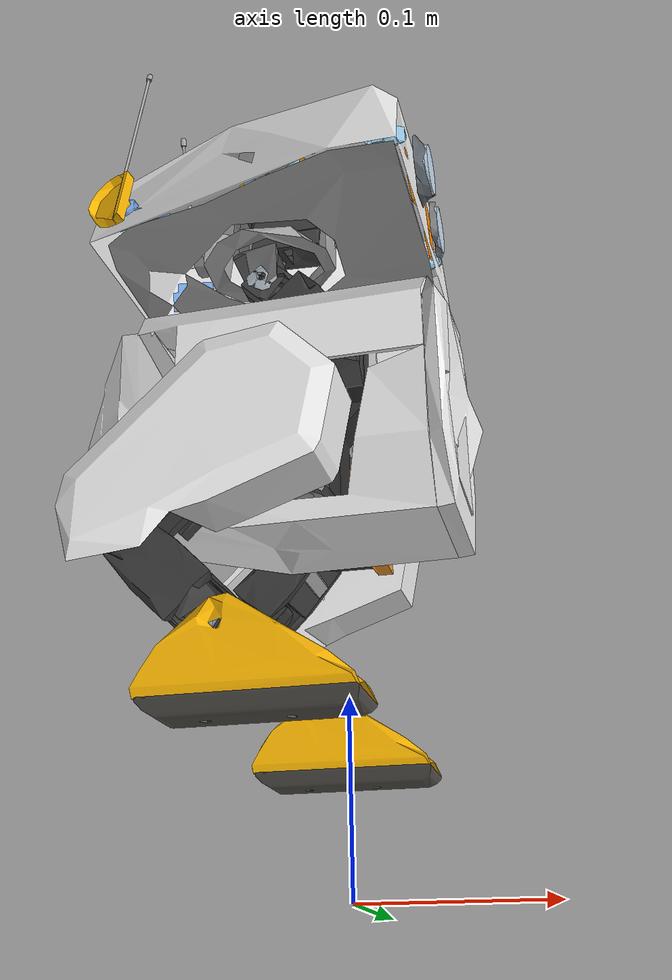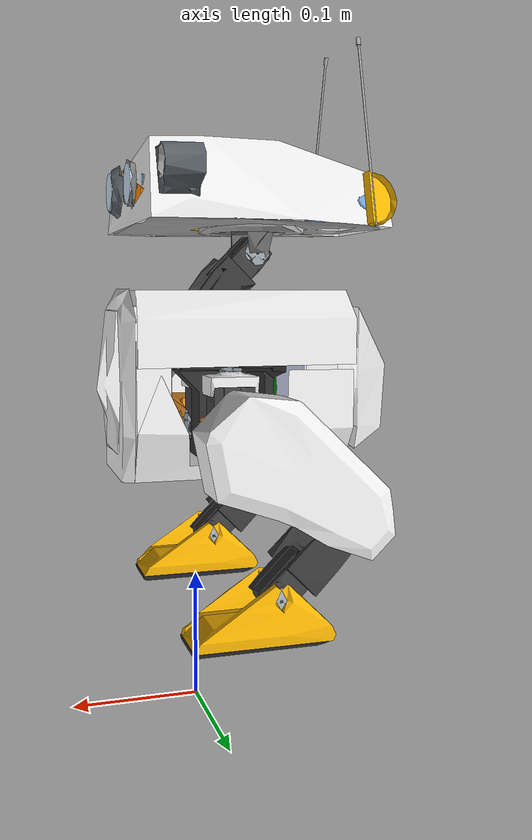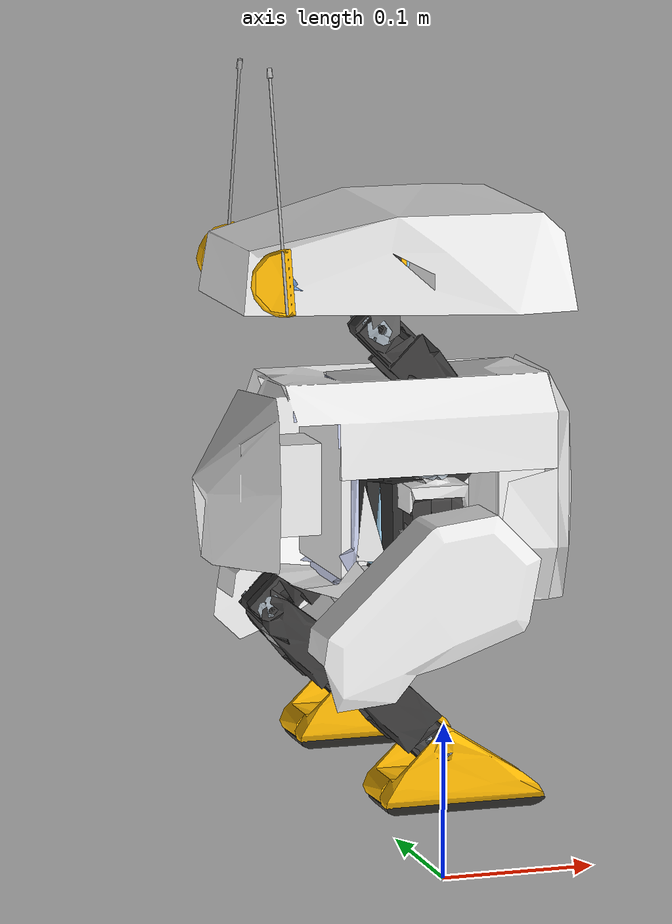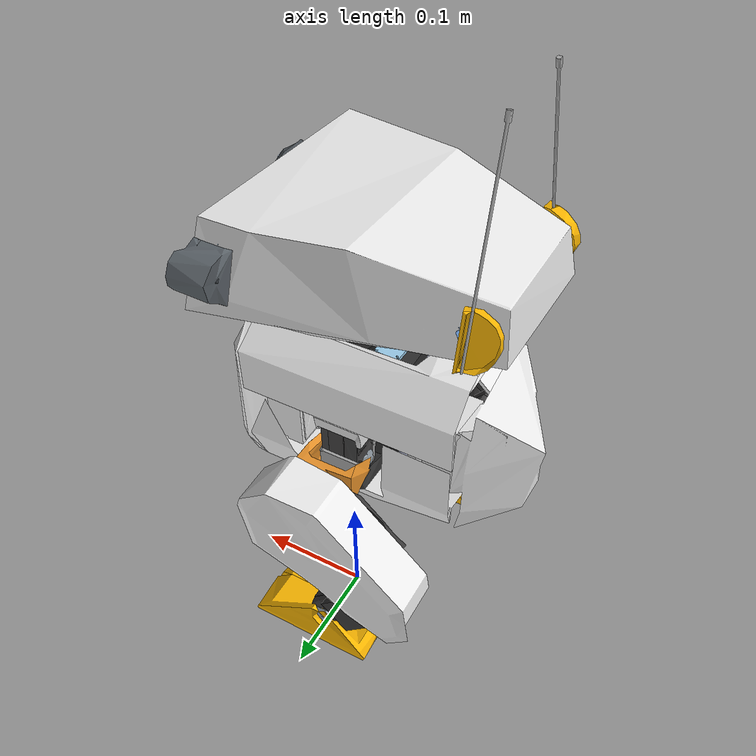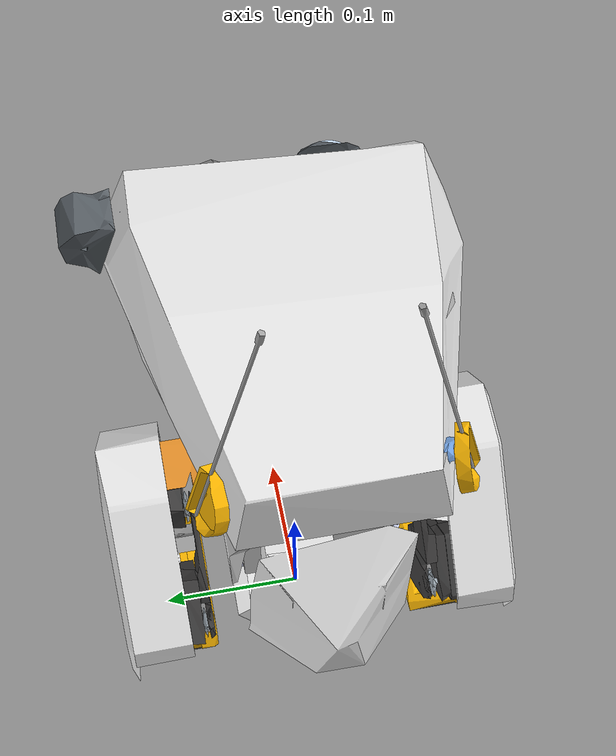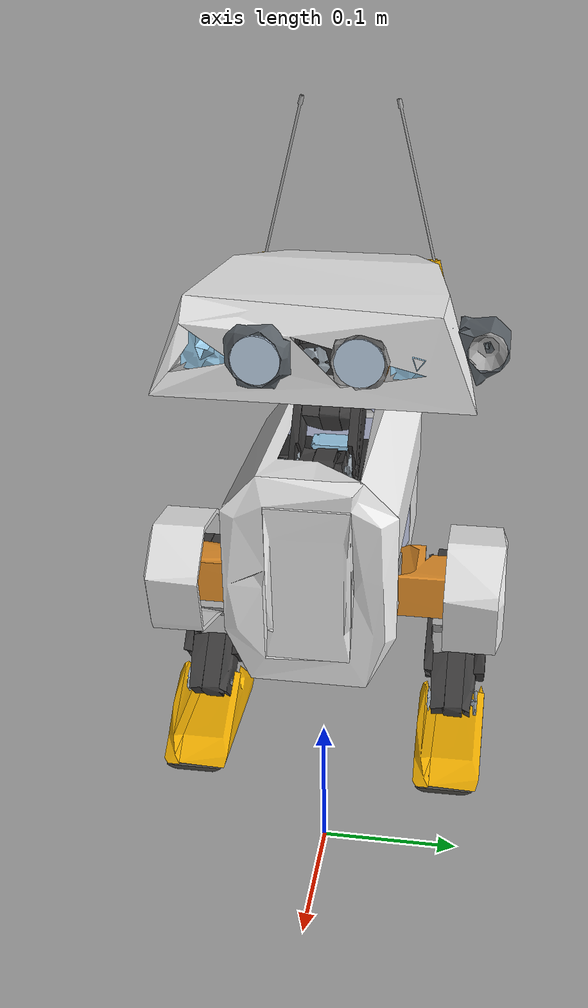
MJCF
<?xml version="1.0" ?>
<!-- Generated using onshape-to-robot -->
<!-- Onshape https://cad.onshape.com/documents/8c845fbc7fa3a1413249e3ae/w/48f29f8f32358649cb0ef961/e/a093785b026f87eebf78a749 -->
<mujoco model="waddle">
  <!-- They had this option in openduck so added here -->
  <option iterations="1" ls_iterations="5">
    <flag eulerdamp="disable"/>
  </option>

  <compiler angle="radian" meshdir="assets" autolimits="true"/>

  <default>
    <default class="waddle">
      <default class="visual">
        <geom type="mesh" contype="0" conaffinity="0" group="2"/>
      </default>
      <default class="collision">
        <geom group="3"/>
      </default>
    </default>
  </default>
  <!-- Additional xmls/sensors.xml -->
  <sensor>
    <gyro site="imu" name="gyro"/>
    <velocimeter site="imu" name="local_linvel"/>
    <accelerometer site="imu" name="accelerometer"/>
    <framezaxis objtype="site" objname="imu" name="upvector"/>
    <framexaxis objtype="site" objname="imu" name="forwardvector"/>
    <framelinvel objtype="site" objname="imu" name="global_linvel"/>
    <frameangvel objtype="site" objname="imu" name="global_angvel"/>
    <framepos objtype="site" objname="imu" name="position"/>
    <framequat objtype="site" objname="imu" name="orientation"/>
    <framelinvel objtype="site" objname="right_foot" name="right_foot_global_linvel"/>
    <framelinvel objtype="site" objname="left_foot" name="left_foot_global_linvel"/>
    <framexaxis objtype="site" objname="left_foot" name="left_foot_upvector"/>
    <framexaxis objtype="site" objname="right_foot" name="right_foot_upvector"/>
    <framepos objtype="site" objname="left_foot" name="left_foot_pos"/>
    <framepos objtype="site" objname="right_foot" name="right_foot_pos"/>
  </sensor>
  <!-- Additional xmls/joints_properties.xml -->
  <default>
    <default class="sts3215">
      <geom contype="0" conaffinity="0"/>
      <joint damping="0.56" frictionloss="0.068" armature="0.027"/>
      <position kp="17.11" kv="0.0" forcerange="-3.23 3.23"/>
    </default>
    <default class="sts3215_12v">
      <geom contype="0" conaffinity="0"/>
      <joint damping="1.05" frictionloss="0.195" armature="0.032"/>
      <position kp="46.3" kv="0.0" forcerange="-8.53 8.53"/>
      <default class="chosen_actuator"/>
    </default>
    <default class="backlash">
      <!-- +/- 0.5° of backlash -->
      <joint damping="0.01" frictionloss="0" armature="0.01" limited="true"
        range="-0.008726646259971648 0.008726646259971648"/>
    </default>
  </default>
  <worldbody>
    <body name="base" pos="0 0 0.22">
      <freejoint name="floating_base"/>
      <site name="imu" pos="-0.040705 -1.715e-09 0.0862909"/>

      <!-- Link trunk_assembly -->
      <body name="trunk_assembly" pos="0 0 0" quat="1 0 0 0" childclass="waddle">
        <inertial pos="-0.0215141 0.00119061 0.0354003" mass="1.1678" fullinertia="0.00252715 0.00565527 0.00482046 0.000146105 0.000181039 -2.75948e-05"/>
        <!-- Part jetson_nano_baseplate -->
        <geom type="mesh" class="visual" pos="-0.072 0 0.0648909" quat="0.707107 -0 -0.707107 0" mesh="jetson_nano_baseplate" material="jetson_nano_baseplate_material"/>
        <!-- Part body_front -->
        <geom type="mesh" class="visual" pos="0.001 0 0.0648909" quat="1 -0 -0 0" mesh="body_front" material="body_front_material"/>
        <!-- Part battery_enclosure -->
        <geom type="mesh" class="visual" pos="0.065 0.027 -0.0151091" quat="0.707107 -0 -0.707107 -0" mesh="battery_enclosure" material="battery_enclosure_material"/>
        <!-- Part turnigy_3s_battery -->
        <geom type="mesh" class="visual" pos="0.027 -0.021 -0.0151091" quat="0 0.707107 0 0.707107" mesh="turnigy_3s_battery" material="turnigy_3s_battery_material"/>
        <!-- Part body_middle_bottom -->
        <geom type="mesh" class="visual" pos="-0.019 -0 0.0648909" quat="1 -0 -0 0" mesh="body_middle_bottom" material="body_middle_bottom_material"/>
        <!-- Part simplified_jetson_nano -->
        <geom type="mesh" class="visual" pos="-0.075 -0.0455645 -0.0129091" quat="0.707107 -0 -0.707107 -0" mesh="simplified_jetson_nano" material="simplified_jetson_nano_material"/>
        <!-- Part switch -->
        <geom type="mesh" class="visual" pos="0.016 -0.0183295 -0.00648406" quat="0.707107 -0.707107 0 0" mesh="switch" material="switch_material"/>
        <!-- Part body_middle_top -->
        <geom type="mesh" class="visual" pos="-0.019 0 0.0648909" quat="1 0 0 0" mesh="body_middle_top" material="body_middle_top_material"/>
        <!-- Part body_back -->
        <geom type="mesh" class="visual" pos="-0.019 0 0.0648909" quat="1 -0 -0 0" mesh="body_back" material="body_back_material"/>
        <!-- Part bno055 -->
        <geom type="mesh" class="visual" pos="-0.040705 -1.715e-09 0.0917909" quat="0 -0 1 -0" mesh="bno055" material="bno055_material"/>
        <!-- Part roll_bearing -->
        <geom type="mesh" class="visual" pos="-0.019 -0 0.0648909" quat="1 0 0 -0" mesh="roll_bearing" material="roll_bearing_material"/>
        <!-- Part trunk_bottom -->
        <geom type="mesh" class="visual" pos="-0.019 0 0.0648909" quat="1 -0 0 0" mesh="trunk_bottom" material="trunk_bottom_material"/>
        <!-- Part trunk_top -->
        <geom type="mesh" class="visual" pos="-0.019 -0 0.0648909" quat="1 -0 -0 0" mesh="trunk_top" material="trunk_top_material"/>
        <!-- Part board -->
        <geom type="mesh" class="visual" pos="-0.06371 0.0171628 0.0404109" quat="0 0.707107 -0 -0.707107" mesh="board" material="board_material"/>
        <!-- Part roll_bearing_2 -->
        <geom type="mesh" class="visual" pos="-0.019 -0.07 0.0648909" quat="1 0 0 -0" mesh="roll_bearing" material="roll_bearing_material"/>
        <!-- Part pdb_xt60 -->
        <geom type="mesh" class="visual" pos="-0.04661 -0.018 0.00179094" quat="0.5 -0.5 -0.5 0.5" mesh="pdb_xt60" material="pdb_xt60_material"/>
        <!-- Part wj_wk00_0123middlecase_56 -->
        <geom type="mesh" class="visual" pos="0.001 0.0097 0.0645009" quat="0.707107 -0 0.707107 -0" mesh="wj_wk00_0123middlecase_56" material="wj_wk00_0123middlecase_56_material"/>
        <!-- Part drive_palonier -->
        <geom type="mesh" class="visual" pos="0.001 0.0097 0.0645009" quat="0.707107 -0 0.707107 -0" mesh="drive_palonier" material="drive_palonier_material"/>
        <!-- Part wj_wk00_0124bottomcase_45 -->
        <geom type="mesh" class="visual" pos="0.001 0.0097 0.0645009" quat="0.707107 -0 0.707107 -0" mesh="wj_wk00_0124bottomcase_45" material="wj_wk00_0124bottomcase_45_material"/>
        <!-- Part wj_wk00_0122topcabinetcase_95 -->
        <geom type="mesh" class="visual" pos="0.001 0.0097 0.0645009" quat="0.707107 -0 0.707107 -0" mesh="wj_wk00_0122topcabinetcase_95" material="wj_wk00_0122topcabinetcase_95_material"/>
        <!-- Part passive_palonier -->
        <geom type="mesh" class="visual" pos="0.001 0.0126 0.0645009" quat="0.707107 -0 0.707107 -0" mesh="passive_palonier" material="passive_palonier_material"/>
        <!-- Part wj_wk00_0123middlecase_56_2 -->
        <geom type="mesh" class="visual" pos="-0.0445 -0.035 0.0553909" quat="0 0 0.707107 -0.707107" mesh="wj_wk00_0123middlecase_56" material="wj_wk00_0123middlecase_56_material"/>
        <!-- Part drive_palonier_2 -->
        <geom type="mesh" class="visual" pos="-0.0445 -0.035 0.0553909" quat="0 0 0.707107 -0.707107" mesh="drive_palonier" material="drive_palonier_material"/>
        <!-- Part wj_wk00_0124bottomcase_45_2 -->
        <geom type="mesh" class="visual" pos="-0.0445 -0.035 0.0553909" quat="0 0 0.707107 -0.707107" mesh="wj_wk00_0124bottomcase_45" material="wj_wk00_0124bottomcase_45_material"/>
        <!-- Part wj_wk00_0122topcabinetcase_95_2 -->
        <geom type="mesh" class="visual" pos="-0.0445 -0.035 0.0553909" quat="0 0 0.707107 -0.707107" mesh="wj_wk00_0122topcabinetcase_95" material="wj_wk00_0122topcabinetcase_95_material"/>
        <!-- Part passive_palonier_2 -->
        <geom type="mesh" class="visual" pos="-0.0445 -0.035 0.0524909" quat="0 0 0.707107 -0.707107" mesh="passive_palonier" material="passive_palonier_material"/>
        <!-- Part wj_wk00_0123middlecase_56_3 -->
        <geom type="mesh" class="visual" pos="-0.0445 0.035 0.0553909" quat="0 0 0.707107 -0.707107" mesh="wj_wk00_0123middlecase_56" material="wj_wk00_0123middlecase_56_material"/>
        <!-- Part drive_palonier_3 -->
        <geom type="mesh" class="visual" pos="-0.0445 0.035 0.0553909" quat="0 0 0.707107 -0.707107" mesh="drive_palonier" material="drive_palonier_material"/>
        <!-- Part wj_wk00_0124bottomcase_45_3 -->
        <geom type="mesh" class="visual" pos="-0.0445 0.035 0.0553909" quat="0 0 0.707107 -0.707107" mesh="wj_wk00_0124bottomcase_45" material="wj_wk00_0124bottomcase_45_material"/>
        <!-- Part wj_wk00_0122topcabinetcase_95_3 -->
        <geom type="mesh" class="visual" pos="-0.0445 0.035 0.0553909" quat="0 0 0.707107 -0.707107" mesh="wj_wk00_0122topcabinetcase_95" material="wj_wk00_0122topcabinetcase_95_material"/>
        <!-- Part passive_palonier_3 -->
        <geom type="mesh" class="visual" pos="-0.0445 0.035 0.0524909" quat="0 0 0.707107 -0.707107" mesh="passive_palonier" material="passive_palonier_material"/>
        <!-- Frame trunk -->
        <site group="3" name="trunk" pos="-0.024 -0 0.0881909" quat="1 -0 -0 0"/>
        <!-- Frame imu -->
        <!-- Link hip_roll_assembly -->
        <body name="hip_roll_assembly" pos="-0.019 0.035 0.0459409" quat="1 -0 -0 -0">
          <!-- Joint from trunk_assembly to hip_roll_assembly -->
          <joint axis="0 0 1" name="left_hip_yaw" type="hinge" range="-0.5235987755981718 0.5235987755984258" class="chosen_actuator"/>
          <joint name="left_hip_yaw_backlash" pos="0 0 0" axis="0 0 1" class="backlash"/>

          <inertial pos="0.000795081 -5.46541e-06 -0.03306" mass="0.06648" fullinertia="2.44411e-05 2.81818e-05 1.42687e-05 2.357e-09 -3.81059e-07 -7.5e-09"/>
          <!-- Part roll_motor_bottom -->
          <geom type="mesh" class="visual" pos="-0 -0.035 0.01905" quat="1 -0 0 -0" mesh="roll_motor_bottom" material="roll_motor_bottom_material"/>
          <!-- Part roll_motor_top -->
          <geom type="mesh" class="visual" pos="0 -0.035 0.01905" quat="1 0 0 0" mesh="roll_motor_top" material="roll_motor_top_material"/>
          <!-- Part wj_wk00_0123middlecase_56_4 -->
          <geom type="mesh" class="visual" pos="0.0096 0 -0.020515" quat="0.5 -0.5 -0.5 -0.5" mesh="wj_wk00_0123middlecase_56" material="wj_wk00_0123middlecase_56_material"/>
          <!-- Part drive_palonier_4 -->
          <geom type="mesh" class="visual" pos="0.0096 0 -0.020515" quat="0.5 -0.5 -0.5 -0.5" mesh="drive_palonier" material="drive_palonier_material"/>
          <!-- Part wj_wk00_0124bottomcase_45_4 -->
          <geom type="mesh" class="visual" pos="0.0096 0 -0.020515" quat="0.5 -0.5 -0.5 -0.5" mesh="wj_wk00_0124bottomcase_45" material="wj_wk00_0124bottomcase_45_material"/>
          <!-- Part wj_wk00_0122topcabinetcase_95_4 -->
          <geom type="mesh" class="visual" pos="0.0096 0 -0.020515" quat="0.5 -0.5 -0.5 -0.5" mesh="wj_wk00_0122topcabinetcase_95" material="wj_wk00_0122topcabinetcase_95_material"/>
          <!-- Part passive_palonier_4 -->
          <geom type="mesh" class="visual" pos="0.0125 0 -0.020515" quat="0.5 -0.5 -0.5 -0.5" mesh="passive_palonier" material="passive_palonier_material"/>

          <!-- Link left_roll_to_pitch_assembly -->
          <body name="left_roll_to_pitch_assembly" pos="0.01905 0 -0.046015" quat="0.5 -0.5 -0.5 0.5">
            <!-- Joint from hip_roll_assembly to left_roll_to_pitch_assembly -->
            <joint axis="0 0 1" name="left_hip_roll" type="hinge" range="-0.43633231299857883 0.43633231299858594" class="chosen_actuator"/>
            <joint name="left_hip_roll_backlash" pos="0 0 0" axis="0 0 1" class="backlash"/>

            <inertial pos="0.0507497 -0.000407512 0.0204377" mass="0.07516" fullinertia="2.52682e-05 4.15738e-05 2.82869e-05 1.22744e-07 -7.32857e-07 -1.05692e-07"/>
            <!-- Part left_roll_to_pitch -->
            <geom type="mesh" class="visual" pos="-0.035 -0.065 0.01905" quat="0.5 0.5 0.5 -0.5" mesh="left_roll_to_pitch" material="left_roll_to_pitch_material"/>
            <!-- Part wj_wk00_0123middlecase_56_5 -->
            <geom type="mesh" class="visual" pos="0.0647 -0 0.00961" quat="0.5 0.5 0.5 -0.5" mesh="wj_wk00_0123middlecase_56" material="wj_wk00_0123middlecase_56_material"/>
            <!-- Part drive_palonier_5 -->
            <geom type="mesh" class="visual" pos="0.0647 -0 0.00961" quat="0.5 0.5 0.5 -0.5" mesh="drive_palonier" material="drive_palonier_material"/>
            <!-- Part wj_wk00_0124bottomcase_45_5 -->
            <geom type="mesh" class="visual" pos="0.0647 -0 0.00961" quat="0.5 0.5 0.5 -0.5" mesh="wj_wk00_0124bottomcase_45" material="wj_wk00_0124bottomcase_45_material"/>
            <!-- Part wj_wk00_0122topcabinetcase_95_5 -->
            <geom type="mesh" class="visual" pos="0.0647 -0 0.00961" quat="0.5 0.5 0.5 -0.5" mesh="wj_wk00_0122topcabinetcase_95" material="wj_wk00_0122topcabinetcase_95_material"/>
            <!-- Part passive_palonier_5 -->
            <geom type="mesh" class="visual" pos="0.0676 0 0.00961" quat="0.5 0.5 0.5 -0.5" mesh="passive_palonier" material="passive_palonier_material"/>

            <!-- Link knee_and_ankle_assembly -->
            <body name="knee_and_ankle_assembly" pos="0.07415 -0 0.03511" quat="0.270598 -0.653281 -0.270598 0.653281">
              <!-- Joint from left_roll_to_pitch_assembly to knee_and_ankle_assembly -->
              <joint axis="0 0 1" name="left_hip_pitch" type="hinge" range="-0.4363323129986063 1.308996938995723" class="chosen_actuator"/>
              <joint name="left_hip_pitch_backlash" pos="0 0 0" axis="0 0 1" class="backlash"/>
              <inertial pos="0.00253369 -0.0390636 0.0102776" mass="0.12407" fullinertia="0.000211406 7.83759e-05 0.000225619 -2.68706e-05 3.81906e-06 2.08009e-05"/>
              <!-- Part left_cache -->
              <geom type="mesh" class="visual" pos="0.01606 0.065 0.10915" quat="0.707107 -0.707107 -0 0" mesh="left_cache" material="left_cache_material"/>
              <!-- Part leg_spacer -->
              <geom type="mesh" class="visual" pos="0.01606 0.14365 0.10925" quat="0.707107 -0.707107 -0 0" mesh="leg_spacer" material="leg_spacer_material"/>
              <!-- Part left_knee_to_ankle_right_sheet -->
              <geom type="mesh" class="visual" pos="0.01606 0.14365 0.10915" quat="0.707107 -0.707107 -0 0" mesh="left_knee_to_ankle_right_sheet" material="left_knee_to_ankle_right_sheet_material"/>
              <!-- Part left_knee_to_ankle_left_sheet -->
              <geom type="mesh" class="visual" pos="0.01606 0.14365 0.10915" quat="0.707107 -0.707107 0 -0" mesh="left_knee_to_ankle_left_sheet" material="left_knee_to_ankle_left_sheet_material"/>
              <!-- Part wj_wk00_0123middlecase_56_6 -->
              <geom type="mesh" class="visual" pos="-0 -0.05315 0.00955" quat="0.5 -0.5 -0.5 0.5" mesh="wj_wk00_0123middlecase_56" material="wj_wk00_0123middlecase_56_material"/>
              <!-- Part drive_palonier_6 -->
              <geom type="mesh" class="visual" pos="-0 -0.05315 0.00955" quat="0.5 -0.5 -0.5 0.5" mesh="drive_palonier" material="drive_palonier_material"/>
              <!-- Part wj_wk00_0124bottomcase_45_6 -->
              <geom type="mesh" class="visual" pos="-0 -0.05315 0.00955" quat="0.5 -0.5 -0.5 0.5" mesh="wj_wk00_0124bottomcase_45" material="wj_wk00_0124bottomcase_45_material"/>
              <!-- Part wj_wk00_0122topcabinetcase_95_6 -->
              <geom type="mesh" class="visual" pos="-0 -0.05315 0.00955" quat="0.5 -0.5 -0.5 0.5" mesh="wj_wk00_0122topcabinetcase_95" material="wj_wk00_0122topcabinetcase_95_material"/>
              <!-- Part passive_palonier_6 -->
              <geom type="mesh" class="visual" pos="0 -0.05315 0.00665" quat="0.5 -0.5 -0.5 0.5" mesh="passive_palonier" material="passive_palonier_material"/>

              <!-- Link knee_and_ankle_assembly_2 -->
              <body name="knee_and_ankle_assembly_2" pos="-0 -0.07865 0.0001" quat="0.707107 -0 -0 0.707107">
                <!-- Joint from knee_and_ankle_assembly to knee_and_ankle_assembly_2 -->
                <joint axis="0 0 1" name="left_knee" type="hinge" range="-3.1415926535897714 2.1760371282653068e-14" class="chosen_actuator"/>
                <joint name="left_knee_backlash" pos="0 0 0" axis="0 0 1" class="backlash"/>

                <inertial pos="5.01859e-06 -0.0577465 0.0181136" mass="0.07259" fullinertia="4.99575e-05 1.87273e-05 4.23932e-05 1.0382e-08 2.252e-09 8.8105e-08"/>
                <!-- Part leg_spacer_2 -->
                <geom type="mesh" class="visual" pos="0.01606 0.14365 0.10925" quat="0.707107 -0.707107 -0 0" mesh="leg_spacer" material="leg_spacer_material"/>
                <!-- Part left_knee_to_ankle_right_sheet_2 -->
                <geom type="mesh" class="visual" pos="0.01606 0.14365 0.10915" quat="0.707107 -0.707107 -0 0" mesh="left_knee_to_ankle_right_sheet" material="left_knee_to_ankle_right_sheet_material"/>
                <!-- Part left_knee_to_ankle_left_sheet_2 -->
                <geom type="mesh" class="visual" pos="0.01606 0.14365 0.10915" quat="0.707107 -0.707107 -0 0" mesh="left_knee_to_ankle_left_sheet" material="left_knee_to_ankle_left_sheet_material"/>
                <!-- Part wj_wk00_0123middlecase_56_7 -->
                <geom type="mesh" class="visual" pos="-0 -0.05315 0.00955" quat="0.5 -0.5 -0.5 0.5" mesh="wj_wk00_0123middlecase_56" material="wj_wk00_0123middlecase_56_material"/>
                <!-- Part drive_palonier_7 -->
                <geom type="mesh" class="visual" pos="-0 -0.05315 0.00955" quat="0.5 -0.5 -0.5 0.5" mesh="drive_palonier" material="drive_palonier_material"/>
                <!-- Part wj_wk00_0124bottomcase_45_7 -->
                <geom type="mesh" class="visual" pos="-0 -0.05315 0.00955" quat="0.5 -0.5 -0.5 0.5" mesh="wj_wk00_0124bottomcase_45" material="wj_wk00_0124bottomcase_45_material"/>
                <!-- Part wj_wk00_0122topcabinetcase_95_7 -->
                <geom type="mesh" class="visual" pos="-0 -0.05315 0.00955" quat="0.5 -0.5 -0.5 0.5" mesh="wj_wk00_0122topcabinetcase_95" material="wj_wk00_0122topcabinetcase_95_material"/>
                <!-- Part passive_palonier_7 -->
                <geom type="mesh" class="visual" pos="-0 -0.05315 0.00665" quat="0.5 -0.5 -0.5 0.5" mesh="passive_palonier" material="passive_palonier_material"/>

                <!-- Link foot_assembly -->
                <body name="foot_assembly" pos="-0 -0.07865 0.0001" quat="0.92388 -0 0 -0.382683">
                  <!-- Joint from knee_and_ankle_assembly_2 to foot_assembly -->
                  <joint axis="0 0 1" name="left_ankle" type="hinge" range="-0.7853981633974456 2.3561944901923475" class="chosen_actuator"/>
                  <joint name="left_ankle_backlash" pos="0 0 0" axis="0 0 1" class="backlash"/>
                  <inertial pos="0.0110718 -0.0246608 0.0190626" mass="0.07524" fullinertia="1.87482e-05 6.74427e-05 6.061e-05 1.58839e-06 -6.524e-09 5.6739e-08"/>
                  <!-- Part foot_side -->
                  <geom type="mesh" class="visual" pos="0.01606 0.2223 0.10905" quat="0.707107 -0.707107 0 -0" mesh="foot_side" material="foot_side_material"/>
                  <!-- Part foot_bottom_tpu -->
                  <geom type="mesh" class="visual" pos="0.01656 0.2228 0.10955" quat="0.707107 -0.707107 0 -0" mesh="foot_bottom_tpu" material="foot_bottom_tpu_material"/>
                  <geom name="left_foot_bottom_tpu" type="mesh" class="collision" pos="0.01656 0.2228 0.10955" quat="0.707107 -0.707107 0 -0" mesh="foot_bottom_tpu" material="foot_bottom_tpu_material"/>
                  <!-- Part foot_bottom_pla -->
                  <geom type="mesh" class="visual" pos="0.01656 0.2228 0.10955" quat="0.707107 -0.707107 0 -0" mesh="foot_bottom_pla" material="foot_bottom_pla_material"/>
                  <!-- Part foot_top -->
                  <geom type="mesh" class="visual" pos="0.01606 0.2223 0.10905" quat="0.707107 -0.707107 0 -0" mesh="foot_top" material="foot_top_material"/>
                  <!-- Frame left_foot -->
                  <site group="3" name="left_foot" pos="0.0005 -0.036225 0.01955" quat="0.707107 -0.707107 -0 0"/>
                </body>
              </body>
            </body>
          </body>
        </body>

        <!-- Link neck_pitch_assembly -->
        <body name="neck_pitch_assembly" pos="0.001 0.01915 0.0900009" quat="0.653281 0.653281 -0.270598 0.270598">
          <!-- Joint from trunk_assembly to neck_pitch_assembly -->
          <joint axis="0 0 1" name="neck_pitch" type="hinge" range="-1.134464013796314 0.34906585039886606" class="chosen_actuator"/>

          <inertial pos="-5.63137e-06 0.0492968 0.0181786" mass="0.06618" fullinertia="3.49456e-05 1.70231e-05 2.80043e-05 8.756e-09 -2.156e-09 -1.8519e-08"/>
          <!-- Part neck_left_sheet -->
          <geom type="mesh" class="visual" pos="-0.02 -0.02511 0.01905" quat="0.707107 -0.707107 0 0" mesh="neck_left_sheet" material="neck_left_sheet_material"/>
          <!-- Part neck_right_sheet -->
          <geom type="mesh" class="visual" pos="-0.02 -0.02511 0.01905" quat="0.707107 -0.707107 0 -0" mesh="neck_right_sheet" material="neck_right_sheet_material"/>
          <!-- Part wj_wk00_0123middlecase_56_8 -->
          <geom type="mesh" class="visual" pos="0 0.0405 0.00945" quat="0.5 -0.5 0.5 -0.5" mesh="wj_wk00_0123middlecase_56" material="wj_wk00_0123middlecase_56_material"/>
          <!-- Part drive_palonier_8 -->
          <geom type="mesh" class="visual" pos="0 0.0405 0.00945" quat="0.5 -0.5 0.5 -0.5" mesh="drive_palonier" material="drive_palonier_material"/>
          <!-- Part wj_wk00_0124bottomcase_45_8 -->
          <geom type="mesh" class="visual" pos="0 0.0405 0.00945" quat="0.5 -0.5 0.5 -0.5" mesh="wj_wk00_0124bottomcase_45" material="wj_wk00_0124bottomcase_45_material"/>
          <!-- Part wj_wk00_0122topcabinetcase_95_8 -->
          <geom type="mesh" class="visual" pos="0 0.0405 0.00945" quat="0.5 -0.5 0.5 -0.5" mesh="wj_wk00_0122topcabinetcase_95" material="wj_wk00_0122topcabinetcase_95_material"/>
          <!-- Part passive_palonier_8 -->
          <geom type="mesh" class="visual" pos="0 0.0405 0.00655" quat="0.5 -0.5 0.5 -0.5" mesh="passive_palonier" material="passive_palonier_material"/>

          <!-- Link head_pitch_to_yaw -->
          <body name="head_pitch_to_yaw" pos="0 0.066 -0" quat="0.92388 -0 0 -0.382683">
            <!-- Joint from neck_pitch_assembly to head_pitch_to_yaw -->
            <joint axis="0 0 1" name="head_pitch" type="hinge" range="0.0 1.5707963267948966" class="chosen_actuator"/>

            <inertial pos="-0.00766247 0.026015 0.0186681" mass="0.0169378" fullinertia="9.43036e-06 4.64763e-06 8.02915e-06 1.35195e-06 3.059e-08 -8.428e-08"/>
            <!-- Part head_pitch_to_yaw -->
            <geom type="mesh" class="visual" pos="-0.02 -0.09111 0.01905" quat="0.707107 -0.707107 0 0" mesh="head_pitch_to_yaw" material="head_pitch_to_yaw_material"/>
            <!-- Link neck_yaw_assembly -->
            <body name="neck_yaw_assembly" pos="-0 0.057 0.01905" quat="0.707107 -0.707107 -0 0">
              <!-- Joint from head_pitch_to_yaw to neck_yaw_assembly -->
              <joint axis="0 0 1" name="head_yaw" type="hinge" range="-2.7925268031909254 2.792526803190929" class="chosen_actuator"/>
              <inertial pos="0.00412907 3.95745e-06 -0.0222828" mass="0.0918099" fullinertia="3.11706e-05 6.94935e-05 7.04025e-05 4.294e-09 -4.41251e-06 -3.82e-09"/>
              <!-- Part head_yaw_to_roll -->
              <geom type="mesh" class="visual" pos="-0.02 -0 -0.14821" quat="1 0 -0 0" mesh="head_yaw_to_roll" material="head_yaw_to_roll_material"/>
              <!-- Part wj_wk00_0123middlecase_56_9 -->
              <geom type="mesh" class="visual" pos="0.0255 0 -0.00945" quat="0.707107 0.707107 -0 -0" mesh="wj_wk00_0123middlecase_56" material="wj_wk00_0123middlecase_56_material"/>
              <!-- Part drive_palonier_9 -->
              <geom type="mesh" class="visual" pos="0.0255 0 -0.00945" quat="0.707107 0.707107 -0 -0" mesh="drive_palonier" material="drive_palonier_material"/>
              <!-- Part wj_wk00_0124bottomcase_45_9 -->
              <geom type="mesh" class="visual" pos="0.0255 0 -0.00945" quat="0.707107 0.707107 -0 -0" mesh="wj_wk00_0124bottomcase_45" material="wj_wk00_0124bottomcase_45_material"/>
              <!-- Part wj_wk00_0122topcabinetcase_95_9 -->
              <geom type="mesh" class="visual" pos="0.0255 0 -0.00945" quat="0.707107 0.707107 -0 -0" mesh="wj_wk00_0122topcabinetcase_95" material="wj_wk00_0122topcabinetcase_95_material"/>
              <!-- Part passive_palonier_9 -->
              <geom type="mesh" class="visual" pos="0.0255 0 -0.00655" quat="0.707107 0.707107 -0 -0" mesh="passive_palonier" material="passive_palonier_material"/>
              <!-- Link head_assembly -->
              <body name="head_assembly" pos="0.04095 0 -0.01915" quat="0.707107 0 -0.707107 0">
                <!-- Joint from neck_yaw_assembly to head_assembly -->
                <joint axis="0 0 1" name="head_roll" type="hinge" range="-0.5235987755982988 0.5235987755982988" class="chosen_actuator"/>
                <inertial pos="0.00970265 -0.00377267 0.0145742" mass="0.456841" fullinertia="0.00288287 0.00188338 0.00130444 3.89528e-07 8.34554e-05 -1.45622e-06"/>
                <!-- Part right_antenna_holder -->
                <geom type="mesh" class="visual" pos="-0.12906 -0 0.06095" quat="0.707107 -0 0.707107 0" mesh="right_antenna_holder" material="right_antenna_holder_material"/>
                <!-- Part antenna -->
                <geom type="mesh" class="visual" pos="-0.0830595 0.182212 0.06095" quat="0.685585 0.173128 0.685585 -0.173128" mesh="antenna" material="antenna_material"/>
                <!-- Part antenna_2 -->
                <geom type="mesh" class="visual" pos="-0.12808 0.000247519 0.06095" quat="0.707107 -0 0.707107 0" mesh="antenna" material="antenna_material"/>
                <!-- Part left_antenna_holder -->
                <geom type="mesh" class="visual" pos="-0.12906 -0 0.06095" quat="0.707107 -0 0.707107 0" mesh="left_antenna_holder" material="left_antenna_holder_material"/>
                <!-- Part usb_camera_ov2710 -->
                <geom type="mesh" class="visual" pos="0.0105858 -0.06368 -0.03795" quat="0.5 -0.5 -0.5 0.5" mesh="usb_camera_ov2710" material="usb_camera_ov2710_material"/>
                <!-- Part head_bot_sheet -->
                <geom type="mesh" class="visual" pos="-0.12906 -0 0.06095" quat="0.707107 -0 0.707107 -0" mesh="head_bot_sheet" material="head_bot_sheet_material"/>
                <!-- Part head_2 -->
                <geom type="mesh" class="visual" pos="-0.12906 -0 0.06095" quat="0.707107 -0 0.707107 -0" mesh="head" material="head_material"/>
                <!-- Part flash_reflector_interface -->
                <geom type="mesh" class="visual" pos="-0.127863 0.00328892 0.06095" quat="0.707107 -0 0.707107 -0" mesh="flash_reflector_interface" material="flash_reflector_interface_material"/>
                <!-- Part bulb -->
                <geom type="mesh" class="visual" pos="-0.12906 0.01 0.06095" quat="0.707107 -0 0.707107 -0" mesh="bulb" material="bulb_material"/>
                <!-- Part glass -->
                <geom type="mesh" class="visual" pos="-0.12906 0.01 0.06115" quat="0.707107 -0 0.707107 -0" mesh="glass" material="glass_material"/>
                <!-- Part head_roll_mount -->
                <geom type="mesh" class="visual" pos="-0.12906 -0 0.06095" quat="0.707107 -0 0.707107 -0" mesh="head_roll_mount" material="head_roll_mount_material"/>
                <!-- Part left_eye -->
                <geom type="mesh" class="visual" pos="-0.12906 -0.01 0.06095" quat="0.707107 -0 0.707107 -0" mesh="left_eye" material="left_eye_material"/>
                <!-- Part flash_light_module -->
                <geom type="mesh" class="visual" pos="-0.127863 0.00328892 0.06095" quat="0.707107 -0 0.707107 -0" mesh="flash_light_module" material="flash_light_module_material"/>
                <!-- Part full_speaker -->
                <geom type="mesh" class="visual" pos="0.00522415 -0.0588802 0.0190505" quat="0.626964 0.372991 0.47889 -0.488321" mesh="full_speaker" material="full_speaker_material"/>
                <!-- Part roll_bearing_3 -->
                <geom type="mesh" class="visual" pos="-0 -0.035 0.167325" quat="1 -0 -0 0" mesh="roll_bearing" material="roll_bearing_material"/>
                <!-- Part sg90 -->
                <geom type="mesh" class="visual" pos="-0.00624594 0.0331408 0.102812" quat="0.488321 -0.47889 -0.372991 -0.626964" mesh="sg90" material="sg90_material"/>
                <!-- Part glass_2 -->
                <geom type="mesh" class="visual" pos="-0.12906 0.01 0.063" quat="0.707107 -0 0.707107 -0" mesh="glass" material="glass_material"/>
                <!-- Part sg90_2 -->
                <geom type="mesh" class="visual" pos="-0.00624594 -0.0331408 0.102812" quat="0.488321 0.47889 -0.372991 0.626964" mesh="sg90" material="sg90_material"/>
                <!-- Part bulb_2 -->
                <geom type="mesh" class="visual" pos="-0.12906 0.07 0.06095" quat="0.707107 -0 0.707107 -0" mesh="bulb" material="bulb_material"/>
                <!-- Part speaker_interface -->
                <geom type="mesh" class="visual" pos="-0.12906 -0 0.06095" quat="0.707107 -0 0.707107 -0" mesh="speaker_interface" material="speaker_interface_material"/>
                <!-- Part speaker_stand -->
                <geom type="mesh" class="visual" pos="-0.12906 -0 0.06095" quat="0.707107 -0 0.707107 -0" mesh="speaker_stand" material="speaker_stand_material"/>
                <!-- Part right_eye -->
                <geom type="mesh" class="visual" pos="-0.12906 0.01 0.06095" quat="0.707107 -0 0.707107 -0" mesh="right_eye" material="right_eye_material"/>
                <!-- Part usb_camera_ov2710_2 -->
                <geom type="mesh" class="visual" pos="0.0105858 0.06368 -0.03805" quat="0.5 -0.5 -0.5 0.5" mesh="usb_camera_ov2710" material="usb_camera_ov2710_material"/>
                <!-- Part glass_3 -->
                <geom type="mesh" class="visual" pos="-0.12906 0.07 0.06515" quat="0.707107 -0 0.707107 -0" mesh="glass" material="glass_material"/>
                <!-- Part glass_4 -->
                <geom type="mesh" class="visual" pos="-0.12906 0.07 0.067" quat="0.707107 -0 0.707107 -0" mesh="glass" material="glass_material"/>
                <!-- Part wj_wk00_0123middlecase_56_10 -->
                <geom type="mesh" class="visual" pos="0.0255 0 -0.00945" quat="0.707107 0.707107 0 0" mesh="wj_wk00_0123middlecase_56" material="wj_wk00_0123middlecase_56_material"/>
                <!-- Part drive_palonier_10 -->
                <geom type="mesh" class="visual" pos="0.0255 0 -0.00945" quat="0.707107 0.707107 0 0" mesh="drive_palonier" material="drive_palonier_material"/>
                <!-- Part wj_wk00_0124bottomcase_45_10 -->
                <geom type="mesh" class="visual" pos="0.0255 0 -0.00945" quat="0.707107 0.707107 0 0" mesh="wj_wk00_0124bottomcase_45" material="wj_wk00_0124bottomcase_45_material"/>
                <!-- Part wj_wk00_0122topcabinetcase_95_10 -->
                <geom type="mesh" class="visual" pos="0.0255 0 -0.00945" quat="0.707107 0.707107 0 0" mesh="wj_wk00_0122topcabinetcase_95" material="wj_wk00_0122topcabinetcase_95_material"/>
                <!-- Part passive_palonier_10 -->
                <geom type="mesh" class="visual" pos="0.0255 0 -0.00655" quat="0.707107 0.707107 0 0" mesh="passive_palonier" material="passive_palonier_material"/>
                <!-- Frame head -->
                <site group="3" name="head" pos="0.04245 -0 0.03595" quat="0.707107 -0 0.707107 -0"/>
              </body>
            </body>
          </body>
        </body>
        <!-- Link hip_roll_assembly_2 -->
        <body name="hip_roll_assembly_2" pos="-0.019 -0.035 0.0459409" quat="1 -0 -0 0">
          <!-- Joint from trunk_assembly to hip_roll_assembly_2 -->
          <joint axis="0 0 1" name="right_hip_yaw" type="hinge" range="-0.5235987755982962 0.5235987755983015" class="chosen_actuator"/>
          <joint name="right_hip_yaw_backlash" pos="0 0 0" axis="0 0 1" class="backlash"/>

          <inertial pos="0.000795081 -5.46541e-06 -0.03306" mass="0.06648" fullinertia="2.44411e-05 2.81818e-05 1.42687e-05 2.357e-09 -3.81059e-07 -7.5e-09"/>
          <!-- Part roll_motor_bottom_2 -->
          <geom type="mesh" class="visual" pos="-0 -0.035 0.01905" quat="1 0 -0 -0" mesh="roll_motor_bottom" material="roll_motor_bottom_material"/>
          <!-- Part roll_motor_top_2 -->
          <geom type="mesh" class="visual" pos="-0 -0.035 0.01905" quat="1 0 0 0" mesh="roll_motor_top" material="roll_motor_top_material"/>
          <!-- Part wj_wk00_0123middlecase_56_11 -->
          <geom type="mesh" class="visual" pos="0.0096 0 -0.020515" quat="0.5 -0.5 -0.5 -0.5" mesh="wj_wk00_0123middlecase_56" material="wj_wk00_0123middlecase_56_material"/>
          <!-- Part drive_palonier_11 -->
          <geom type="mesh" class="visual" pos="0.0096 0 -0.020515" quat="0.5 -0.5 -0.5 -0.5" mesh="drive_palonier" material="drive_palonier_material"/>
          <!-- Part wj_wk00_0124bottomcase_45_11 -->
          <geom type="mesh" class="visual" pos="0.0096 0 -0.020515" quat="0.5 -0.5 -0.5 -0.5" mesh="wj_wk00_0124bottomcase_45" material="wj_wk00_0124bottomcase_45_material"/>
          <!-- Part wj_wk00_0122topcabinetcase_95_11 -->
          <geom type="mesh" class="visual" pos="0.0096 0 -0.020515" quat="0.5 -0.5 -0.5 -0.5" mesh="wj_wk00_0122topcabinetcase_95" material="wj_wk00_0122topcabinetcase_95_material"/>
          <!-- Part passive_palonier_11 -->
          <geom type="mesh" class="visual" pos="0.0125 0 -0.020515" quat="0.5 -0.5 -0.5 -0.5" mesh="passive_palonier" material="passive_palonier_material"/>
          <!-- Link right_roll_to_pitch_assembly -->
          <body name="right_roll_to_pitch_assembly" pos="0.01905 0 -0.046015" quat="0.5 -0.5 -0.5 0.5">
            <!-- Joint from hip_roll_assembly_2 to right_roll_to_pitch_assembly -->
            <joint axis="0 0 1" name="right_hip_roll" type="hinge" range="-0.4363323129985753 0.4363323129985895" class="chosen_actuator"/>
            <joint name="right_hip_roll_backlash" pos="0 0 0" axis="0 0 1" class="backlash"/>

            <inertial pos="-0.0507497 -0.000417205 0.0204377" mass="0.07516" fullinertia="2.52676e-05 4.15738e-05 2.82863e-05 -1.31172e-07 7.32857e-07 -8.9468e-08"/>
            <!-- Part right_roll_to_pitch -->
            <geom type="mesh" class="visual" pos="0.035 -0.065 0.01905" quat="0.5 0.5 0.5 -0.5" mesh="right_roll_to_pitch" material="right_roll_to_pitch_material"/>
            <!-- Part wj_wk00_0123middlecase_56_12 -->
            <geom type="mesh" class="visual" pos="-0.0647 -0 0.00961" quat="0.5 -0.5 0.5 0.5" mesh="wj_wk00_0123middlecase_56" material="wj_wk00_0123middlecase_56_material"/>
            <!-- Part drive_palonier_12 -->
            <geom type="mesh" class="visual" pos="-0.0647 -0 0.00961" quat="0.5 -0.5 0.5 0.5" mesh="drive_palonier" material="drive_palonier_material"/>
            <!-- Part wj_wk00_0124bottomcase_45_12 -->
            <geom type="mesh" class="visual" pos="-0.0647 -0 0.00961" quat="0.5 -0.5 0.5 0.5" mesh="wj_wk00_0124bottomcase_45" material="wj_wk00_0124bottomcase_45_material"/>
            <!-- Part wj_wk00_0122topcabinetcase_95_12 -->
            <geom type="mesh" class="visual" pos="-0.0647 -0 0.00961" quat="0.5 -0.5 0.5 0.5" mesh="wj_wk00_0122topcabinetcase_95" material="wj_wk00_0122topcabinetcase_95_material"/>
            <!-- Part passive_palonier_12 -->
            <geom type="mesh" class="visual" pos="-0.0676 0 0.00961" quat="0.5 -0.5 0.5 0.5" mesh="passive_palonier" material="passive_palonier_material"/>
            <!-- Link knee_and_ankle_assembly_3 -->
            <body name="knee_and_ankle_assembly_3" pos="-0.07415 -0 0.03511" quat="0.653281 0.270598 0.653281 0.270598">
              <!-- Joint from right_roll_to_pitch_assembly to knee_and_ankle_assembly_3 -->
              <joint axis="0 0 1" name="right_hip_pitch" type="hinge" range="-1.3089969389957345 0.43633231299859476" class="chosen_actuator"/>
              <joint name="right_hip_pitch_backlash" pos="0 0 0" axis="0 0 1" class="backlash"/>

              <inertial pos="0.00253369 0.0390636 0.010809" mass="0.12407" fullinertia="0.000212363 7.93324e-05 0.000225619 2.68706e-05 3.9656e-06 -2.17407e-05"/>
              <!-- Part right_cache -->
              <geom type="mesh" class="visual" pos="0.01606 -0.065 0.1092" quat="0.707107 0.707107 -0 0" mesh="right_cache" material="right_cache_material"/>
              <!-- Part leg_spacer_3 -->
              <geom type="mesh" class="visual" pos="0.01606 -0.14365 -0.07215" quat="0.707107 0.707107 -0 0" mesh="leg_spacer" material="leg_spacer_material"/>
              <!-- Part left_knee_to_ankle_right_sheet_3 -->
              <geom type="mesh" class="visual" pos="0.01606 -0.14365 -0.07205" quat="0.707107 0.707107 0 0" mesh="left_knee_to_ankle_right_sheet" material="left_knee_to_ankle_right_sheet_material"/>
              <!-- Part left_knee_to_ankle_left_sheet_3 -->
              <geom type="mesh" class="visual" pos="0.01606 -0.14365 -0.07205" quat="0.707107 0.707107 0 0" mesh="left_knee_to_ankle_left_sheet" material="left_knee_to_ankle_left_sheet_material"/>
              <!-- Part wj_wk00_0123middlecase_56_13 -->
              <geom type="mesh" class="visual" pos="-0 0.05315 0.02755" quat="0.5 0.5 -0.5 -0.5" mesh="wj_wk00_0123middlecase_56" material="wj_wk00_0123middlecase_56_material"/>
              <!-- Part drive_palonier_13 -->
              <geom type="mesh" class="visual" pos="-0 0.05315 0.02755" quat="0.5 0.5 -0.5 -0.5" mesh="drive_palonier" material="drive_palonier_material"/>
              <!-- Part wj_wk00_0124bottomcase_45_13 -->
              <geom type="mesh" class="visual" pos="-0 0.05315 0.02755" quat="0.5 0.5 -0.5 -0.5" mesh="wj_wk00_0124bottomcase_45" material="wj_wk00_0124bottomcase_45_material"/>
              <!-- Part wj_wk00_0122topcabinetcase_95_13 -->
              <geom type="mesh" class="visual" pos="-0 0.05315 0.02755" quat="0.5 0.5 -0.5 -0.5" mesh="wj_wk00_0122topcabinetcase_95" material="wj_wk00_0122topcabinetcase_95_material"/>
              <!-- Part passive_palonier_13 -->
              <geom type="mesh" class="visual" pos="-0 0.05315 0.03045" quat="0.5 0.5 -0.5 -0.5" mesh="passive_palonier" material="passive_palonier_material"/>
              <!-- Link knee_and_ankle_assembly_4 -->
              <body name="knee_and_ankle_assembly_4" pos="-0 0.07865 0.037" quat="0 -0.707107 0.707107 -0">
                <!-- Joint from knee_and_ankle_assembly_3 to knee_and_ankle_assembly_4 -->
                <joint axis="0 0 1" name="right_knee" type="hinge" range="-3.1415926535897905 2.6645352591003757e-15" class="chosen_actuator"/>
                <joint name="right_knee_backlash" pos="0 0 0" axis="0 0 1" class="backlash"/>

                <inertial pos="5.01859e-06 -0.0577465 0.0181136" mass="0.07259" fullinertia="4.99575e-05 1.87273e-05 4.23932e-05 1.0382e-08 2.252e-09 8.8105e-08"/>
                <!-- Part leg_spacer_4 -->
                <geom type="mesh" class="visual" pos="0.01606 0.14365 0.10925" quat="0.707107 -0.707107 0 -0" mesh="leg_spacer" material="leg_spacer_material"/>
                <!-- Part left_knee_to_ankle_right_sheet_4 -->
                <geom type="mesh" class="visual" pos="0.01606 0.14365 0.10915" quat="0.707107 -0.707107 0 -0" mesh="left_knee_to_ankle_right_sheet" material="left_knee_to_ankle_right_sheet_material"/>
                <!-- Part left_knee_to_ankle_left_sheet_4 -->
                <geom type="mesh" class="visual" pos="0.01606 0.14365 0.10915" quat="0.707107 -0.707107 0 0" mesh="left_knee_to_ankle_left_sheet" material="left_knee_to_ankle_left_sheet_material"/>
                <!-- Part wj_wk00_0123middlecase_56_14 -->
                <geom type="mesh" class="visual" pos="0 -0.05315 0.00955" quat="0.5 -0.5 -0.5 0.5" mesh="wj_wk00_0123middlecase_56" material="wj_wk00_0123middlecase_56_material"/>
                <!-- Part drive_palonier_14 -->
                <geom type="mesh" class="visual" pos="0 -0.05315 0.00955" quat="0.5 -0.5 -0.5 0.5" mesh="drive_palonier" material="drive_palonier_material"/>
                <!-- Part wj_wk00_0124bottomcase_45_14 -->
                <geom type="mesh" class="visual" pos="0 -0.05315 0.00955" quat="0.5 -0.5 -0.5 0.5" mesh="wj_wk00_0124bottomcase_45" material="wj_wk00_0124bottomcase_45_material"/>
                <!-- Part wj_wk00_0122topcabinetcase_95_14 -->
                <geom type="mesh" class="visual" pos="0 -0.05315 0.00955" quat="0.5 -0.5 -0.5 0.5" mesh="wj_wk00_0122topcabinetcase_95" material="wj_wk00_0122topcabinetcase_95_material"/>
                <!-- Part passive_palonier_14 -->
                <geom type="mesh" class="visual" pos="0 -0.05315 0.00665" quat="0.5 -0.5 -0.5 0.5" mesh="passive_palonier" material="passive_palonier_material"/>
                <!-- Link foot_assembly_2 -->
                <body name="foot_assembly_2" pos="-0 -0.07865 0.0001" quat="0.92388 -0 -0 -0.382683">
                  <!-- Joint from knee_and_ankle_assembly_4 to foot_assembly_2 -->
                  <joint axis="0 0 1" name="right_ankle" type="hinge" range="-0.7853981633974412 2.356194490192352" class="chosen_actuator"/>
                  <joint name="right_ankle_backlash" pos="0 0 0" axis="0 0 1" class="backlash"/>

                  <inertial pos="0.0110718 -0.0246608 0.0190626" mass="0.07524" fullinertia="1.87482e-05 6.74427e-05 6.061e-05 1.58839e-06 -6.524e-09 5.6739e-08"/>
                  <!-- Part foot_side_2 -->
                  <geom type="mesh" class="visual" pos="0.01606 0.2223 0.10905" quat="0.707107 -0.707107 0 0" mesh="foot_side" material="foot_side_material"/>
                  <!-- Part foot_bottom_tpu_2 -->
                  <geom type="mesh" class="visual" pos="0.01656 0.2228 0.10955" quat="0.707107 -0.707107 0 0" mesh="foot_bottom_tpu" material="foot_bottom_tpu_material"/>
                  <geom name="right_foot_bottom_tpu" type="mesh" class="collision" pos="0.01656 0.2228 0.10955" quat="0.707107 -0.707107 0 0" mesh="foot_bottom_tpu" material="foot_bottom_tpu_material"/>
                  <!-- Part foot_bottom_pla_2 -->
                  <geom type="mesh" class="visual" pos="0.01656 0.2228 0.10955" quat="0.707107 -0.707107 0 0" mesh="foot_bottom_pla" material="foot_bottom_pla_material"/>
                  <!-- Part foot_top_2 -->
                  <geom type="mesh" class="visual" pos="0.01606 0.2223 0.10905" quat="0.707107 -0.707107 0 0" mesh="foot_top" material="foot_top_material"/>
                  <!-- Frame right_foot -->
                  <site group="3" name="right_foot" pos="0.0005 -0.036225 0.01955" quat="0.707107 -0.707107 0 0"/>
                </body>
              </body>
            </body>
          </body>
        </body>
      </body>
    </body>
  </worldbody>
  <asset>
    <mesh file="left_cache.stl"/>
    <mesh file="simplified_jetson_nano.stl"/>
    <mesh file="head_pitch_to_yaw.stl"/>
    <mesh file="glass.stl"/>
    <mesh file="wj_wk00_0122topcabinetcase_95.stl"/>
    <mesh file="left_knee_to_ankle_left_sheet.stl"/>
    <mesh file="battery_enclosure.stl"/>
    <mesh file="left_eye.stl"/>
    <mesh file="turnigy_3s_battery.stl"/>
    <mesh file="antenna.stl"/>
    <mesh file="body_front.stl"/>
    <mesh file="roll_motor_top.stl"/>
    <mesh file="right_cache.stl"/>
    <mesh file="left_knee_to_ankle_right_sheet.stl"/>
    <mesh file="jetson_nano_baseplate.stl"/>
    <mesh file="wj_wk00_0123middlecase_56.stl"/>
    <mesh file="neck_left_sheet.stl"/>
    <mesh file="head.stl"/>
    <mesh file="foot_bottom_tpu.stl"/>
    <mesh file="flash_light_module.stl"/>
    <mesh file="passive_palonier.stl"/>
    <mesh file="drive_palonier.stl"/>
    <mesh file="head_yaw_to_roll.stl"/>
    <mesh file="flash_reflector_interface.stl"/>
    <mesh file="full_speaker.stl"/>
    <mesh file="switch.stl"/>
    <mesh file="body_back.stl"/>
    <mesh file="roll_motor_bottom.stl"/>
    <mesh file="left_antenna_holder.stl"/>
    <mesh file="right_eye.stl"/>
    <mesh file="neck_right_sheet.stl"/>
    <mesh file="bno055.stl"/>
    <mesh file="left_roll_to_pitch.stl"/>
    <mesh file="head_roll_mount.stl"/>
    <mesh file="trunk_bottom.stl"/>
    <mesh file="trunk_top.stl"/>
    <mesh file="foot_side.stl"/>
    <mesh file="right_antenna_holder.stl"/>
    <mesh file="foot_bottom_pla.stl"/>
    <mesh file="bulb.stl"/>
    <mesh file="leg_spacer.stl"/>
    <mesh file="foot_top.stl"/>
    <mesh file="sg90.stl"/>
    <mesh file="pdb_xt60.stl"/>
    <mesh file="board.stl"/>
    <mesh file="speaker_stand.stl"/>
    <mesh file="usb_camera_ov2710.stl"/>
    <mesh file="body_middle_top.stl"/>
    <mesh file="wj_wk00_0124bottomcase_45.stl"/>
    <mesh file="head_bot_sheet.stl"/>
    <mesh file="right_roll_to_pitch.stl"/>
    <mesh file="speaker_interface.stl"/>
    <mesh file="body_middle_bottom.stl"/>
    <mesh file="roll_bearing.stl"/>
    <material name="jetson_nano_baseplate_material" rgba="0.796078 0.823529 0.937255 1"/>
    <material name="body_front_material" rgba="0.917647 0.917647 0.917647 1"/>
    <material name="battery_enclosure_material" rgba="0.901961 0.901961 0.901961 1"/>
    <material name="turnigy_3s_battery_material" rgba="0.901961 0.901961 0.901961 1"/>
    <material name="body_middle_bottom_material" rgba="0.917647 0.917647 0.917647 1"/>
    <material name="simplified_jetson_nano_material" rgba="0.901961 0.901961 0.901961 1"/>
    <material name="switch_material" rgba="0.972549 0.529412 0.00392157 1"/>
    <material name="body_middle_top_material" rgba="0.917647 0.917647 0.917647 1"/>
    <material name="body_back_material" rgba="0.917647 0.917647 0.917647 1"/>
    <material name="bno055_material" rgba="0.615686 0.811765 0.929412 1"/>
    <material name="roll_bearing_material" rgba="0.6 0.6 0.6 1"/>
    <material name="trunk_bottom_material" rgba="0.180392 0.180392 0.180392 1"/>
    <material name="trunk_top_material" rgba="0.180392 0.180392 0.180392 1"/>
    <material name="board_material" rgba="0 0.501961 0 1"/>
    <material name="pdb_xt60_material" rgba="0.615686 0.811765 0.929412 1"/>
    <material name="wj_wk00_0123middlecase_56_material" rgba="0.247059 0.243137 0.243137 1"/>
    <material name="drive_palonier_material" rgba="0.623529 0.666667 0.701961 1"/>
    <material name="wj_wk00_0124bottomcase_45_material" rgba="0.247059 0.243137 0.243137 1"/>
    <material name="wj_wk00_0122topcabinetcase_95_material" rgba="0.247059 0.243137 0.243137 1"/>
    <material name="passive_palonier_material" rgba="0.623529 0.666667 0.701961 1"/>
    <material name="roll_motor_bottom_material" rgba="0.647059 0.647059 0.647059 1"/>
    <material name="roll_motor_top_material" rgba="0.901961 0.901961 0.901961 1"/>
    <material name="left_roll_to_pitch_material" rgba="0.909804 0.572549 0.164706 1"/>
    <material name="left_cache_material" rgba="0.917647 0.917647 0.917647 1"/>
    <material name="leg_spacer_material" rgba="0.647059 0.647059 0.647059 1"/>
    <material name="left_knee_to_ankle_right_sheet_material" rgba="0.223529 0.219608 0.219608 1"/>
    <material name="left_knee_to_ankle_left_sheet_material" rgba="0.223529 0.219608 0.219608 1"/>
    <material name="foot_side_material" rgba="0.980392 0.713725 0.00392157 1"/>
    <material name="foot_bottom_tpu_material" rgba="0.305882 0.298039 0.278431 1"/>
    <material name="foot_bottom_pla_material" rgba="0.305882 0.298039 0.278431 1"/>
    <material name="foot_top_material" rgba="0.980392 0.713725 0.00392157 1"/>
    <material name="neck_left_sheet_material" rgba="0.223529 0.219608 0.219608 1"/>
    <material name="neck_right_sheet_material" rgba="0.223529 0.219608 0.219608 1"/>
    <material name="head_pitch_to_yaw_material" rgba="0.4 0.4 0.4 1"/>
    <material name="head_yaw_to_roll_material" rgba="0.647059 0.647059 0.647059 1"/>
    <material name="right_antenna_holder_material" rgba="0.980392 0.713725 0.00392157 1"/>
    <material name="antenna_material" rgba="0.647059 0.647059 0.647059 1"/>
    <material name="left_antenna_holder_material" rgba="0.980392 0.713725 0.00392157 1"/>
    <material name="usb_camera_ov2710_material" rgba="0.615686 0.811765 0.929412 1"/>
    <material name="head_bot_sheet_material" rgba="0.647059 0.647059 0.647059 1"/>
    <material name="head_material" rgba="0.917647 0.917647 0.917647 1"/>
    <material name="flash_reflector_interface_material" rgba="0.647059 0.647059 0.647059 1"/>
    <material name="bulb_material" rgba="0.972549 0.529412 0.00392157 1"/>
    <material name="glass_material" rgba="0.760784 0.839216 0.92549 0.909804"/>
    <material name="head_roll_mount_material" rgba="0.501961 0.501961 0.501961 1"/>
    <material name="left_eye_material" rgba="0.498039 0.498039 0.498039 1"/>
    <material name="flash_light_module_material" rgba="0.34902 0.376471 0.4 1"/>
    <material name="full_speaker_material" rgba="0.647059 0.647059 0.647059 1"/>
    <material name="sg90_material" rgba="0.435294 0.670588 0.976471 0.827451"/>
    <material name="speaker_interface_material" rgba="0.615686 0.811765 0.929412 1"/>
    <material name="speaker_stand_material" rgba="0.980392 0.713725 0.00392157 1"/>
    <material name="right_eye_material" rgba="0.34902 0.376471 0.4 1"/>
    <material name="right_roll_to_pitch_material" rgba="0.909804 0.572549 0.164706 1"/>
    <material name="right_cache_material" rgba="0.917647 0.917647 0.917647 1"/>
  </asset>
  <actuator>
    <position class="chosen_actuator" name="left_hip_yaw" joint="left_hip_yaw" inheritrange="1"/>
    <position class="chosen_actuator" name="left_hip_roll" joint="left_hip_roll" inheritrange="1"/>
    <position class="chosen_actuator" name="left_hip_pitch" joint="left_hip_pitch" inheritrange="1"/>
    <position class="chosen_actuator" name="left_knee" joint="left_knee" inheritrange="1"/>
    <position class="chosen_actuator" name="left_ankle" joint="left_ankle" inheritrange="1"/>
    <position class="chosen_actuator" name="neck_pitch" joint="neck_pitch" inheritrange="1"/>
    <position class="chosen_actuator" name="head_pitch" joint="head_pitch" inheritrange="1"/>
    <position class="chosen_actuator" name="head_yaw" joint="head_yaw" inheritrange="1"/>
    <position class="chosen_actuator" name="head_roll" joint="head_roll" inheritrange="1"/>
    <position class="chosen_actuator" name="right_hip_yaw" joint="right_hip_yaw" inheritrange="1"/>
    <position class="chosen_actuator" name="right_hip_roll" joint="right_hip_roll" inheritrange="1"/>
    <position class="chosen_actuator" name="right_hip_pitch" joint="right_hip_pitch" inheritrange="1"/>
    <position class="chosen_actuator" name="right_knee" joint="right_knee" inheritrange="1"/>
    <position class="chosen_actuator" name="right_ankle" joint="right_ankle" inheritrange="1"/>
  </actuator>
  <equality/>
</mujoco>
